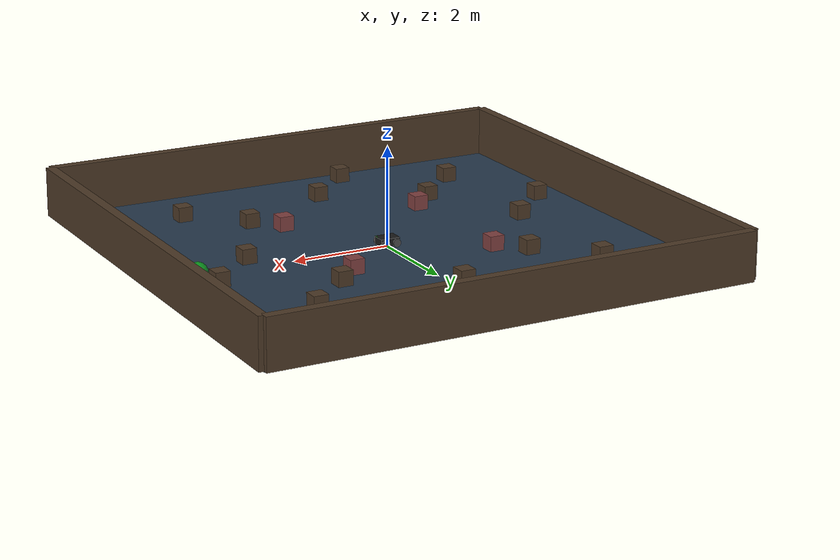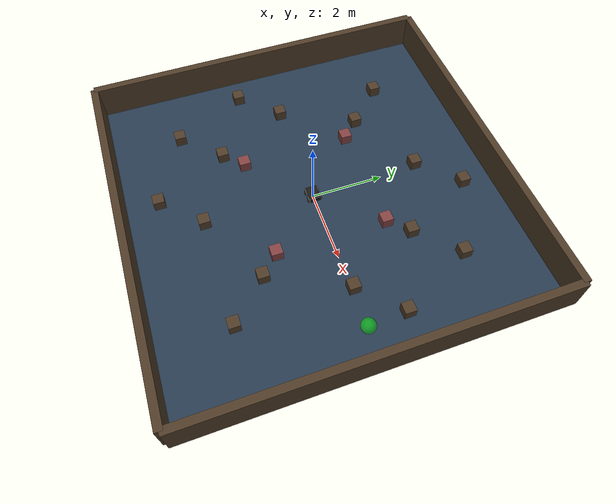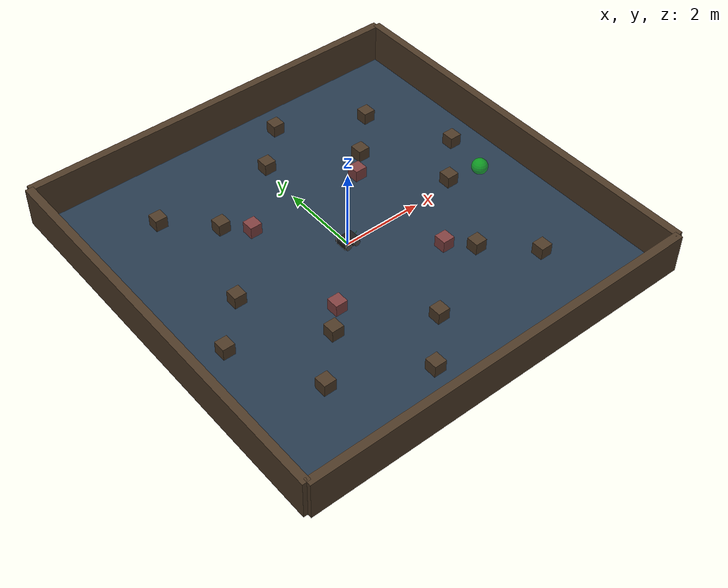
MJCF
<mujoco model="mobile_robot_box_forest">
    <compiler angle="degree" coordinate="local" inertiafromgeom="true" autolimits="true"/>
    <option integrator="RK4" timestep="0.002" iterations="100" solver="Newton" gravity="0 0 -9.81"/>

    <asset>
        <texture name="texplane" type="2d" builtin="checker" rgb1=".2 .3 .4" rgb2=".1 .15 .2" width="512" height="512" mark="cross" markrgb=".8 .8 .8"/>
        <material name="matplane" reflectance="0.3" texture="texplane" texrepeat="1 1" texuniform="true"/>
        <texture name="texbrick" type="2d" builtin="checker" rgb1=".6 .3 .3" rgb2=".4 .2 .2" width="256" height="256"/>
        <material name="matbrick" texture="texbrick"/>
        <texture name="texwood" type="2d" builtin="checker" rgb1=".4 .3 .2" rgb2=".2 .15 .1" width="256" height="256"/>
        <material name="matwood" texture="texwood"/>
    </asset>

    <worldbody>
        <light directional="true" cutoff="100" exponent="1" diffuse=".8 .8 .8" specular=".1 .1 .1" pos="0 0 10" dir="0 0 -1"/>
        <geom name="floor" pos="0 0 0" size="5 5 .1" type="plane" material="matplane" condim="3"/>

        <!-- Boundary Walls -->
        <geom name="wall_n" pos="0 5 0.5" size="5 0.1 0.5" type="box" material="matwood"/>
        <geom name="wall_s" pos="0 -5 0.5" size="5 0.1 0.5" type="box" material="matwood"/>
        <geom name="wall_e" pos="5 0 0.5" size="0.1 5 0.5" type="box" material="matwood"/>
        <geom name="wall_w" pos="-5 0 0.5" size="0.1 5 0.5" type="box" material="matwood"/>

        <!-- 20 Randomized Boxes -->
        <body name="box0" pos="2 2 0.3"><joint type="free"/><geom size="0.15 0.15 0.15" type="box" material="matwood" mass="50" friction="0.1"/></body>
        <body name="box1" pos="-2 -2 0.3"><joint type="free"/><geom size="0.15 0.15 0.15" type="box" material="matwood" mass="50" friction="0.1"/></body>
        <body name="box2" pos="2 -2 0.3"><joint type="free"/><geom size="0.15 0.15 0.15" type="box" material="matwood" mass="50" friction="0.1"/></body>
        <body name="box3" pos="-2 2 0.3"><joint type="free"/><geom size="0.15 0.15 0.15" type="box" material="matwood" mass="50" friction="0.1"/></body>
        <body name="box4" pos="3 3 0.3"><joint type="free"/><geom size="0.15 0.15 0.15" type="box" material="matwood" mass="50" friction="0.1"/></body>
        <body name="box5" pos="-3 -3 0.3"><joint type="free"/><geom size="0.15 0.15 0.15" type="box" material="matwood" mass="50" friction="0.1"/></body>
        <body name="box6" pos="3 -3 0.3"><joint type="free"/><geom size="0.15 0.15 0.15" type="box" material="matwood" mass="50" friction="0.1"/></body>
        <body name="box7" pos="-3 3 0.3"><joint type="free"/><geom size="0.15 0.15 0.15" type="box" material="matwood" mass="50" friction="0.1"/></body>
        <body name="box8" pos="1 4 0.3"><joint type="free"/><geom size="0.15 0.15 0.15" type="box" material="matwood" mass="50" friction="0.1"/></body>
        <body name="box9" pos="-1 -4 0.3"><joint type="free"/><geom size="0.15 0.15 0.15" type="box" material="matwood" mass="50" friction="0.1"/></body>
        <body name="box10" pos="4 1 0.3"><joint type="free"/><geom size="0.15 0.15 0.15" type="box" material="matwood" mass="50" friction="0.1"/></body>
        <body name="box11" pos="-4 -1 0.3"><joint type="free"/><geom size="0.15 0.15 0.15" type="box" material="matwood" mass="50" friction="0.1"/></body>
        <body name="box12" pos="0 3 0.3"><joint type="free"/><geom size="0.15 0.15 0.15" type="box" material="matwood" mass="50" friction="0.1"/></body>
        <body name="box13" pos="0 -3 0.3"><joint type="free"/><geom size="0.15 0.15 0.15" type="box" material="matwood" mass="50" friction="0.1"/></body>
        <body name="box14" pos="3 0 0.3"><joint type="free"/><geom size="0.15 0.15 0.15" type="box" material="matwood" mass="50" friction="0.1"/></body>
        <body name="box15" pos="-3 0 0.3"><joint type="free"/><geom size="0.15 0.15 0.15" type="box" material="matwood" mass="50" friction="0.1"/></body>
        <body name="box16" pos="1.5 1.5 0.3"><joint type="free"/><geom size="0.15 0.15 0.15" type="box" material="matbrick" mass="50" friction="0.1"/></body>
        <body name="box17" pos="-1.5 -1.5 0.3"><joint type="free"/><geom size="0.15 0.15 0.15" type="box" material="matbrick" mass="50" friction="0.1"/></body>
        <body name="box18" pos="1.5 -1.5 0.3"><joint type="free"/><geom size="0.15 0.15 0.15" type="box" material="matbrick" mass="50" friction="0.1"/></body>
        <body name="box19" pos="-1.5 1.5 0.3"><joint type="free"/><geom size="0.15 0.15 0.15" type="box" material="matbrick" mass="50" friction="0.1"/></body>

        <!-- Mobile Robot (Start at Center) -->
        <body name="robot" pos="0 0 0.1">
            <freejoint name="root"/>
            <geom name="chassis" pos="0 0 0.02" size="0.2 0.15 0.08" type="box" rgba="0.1 0.1 0.1 1" mass="5"/>
            <body name="wfl" pos="0.12 0.17 0"><joint name="dfl" damping="0.1" axis="0 1 0"/><geom size="0.08 0.02" type="cylinder" euler="90 0 0" rgba="0.3 0.3 0.3 1" friction="1 0.005 0.0001"/></body>
            <body name="wrl" pos="-0.12 0.17 0"><joint name="drl" damping="0.1" axis="0 1 0"/><geom size="0.08 0.02" type="cylinder" euler="90 0 0" rgba="0.3 0.3 0.3 1" friction="1 0.005 0.0001"/></body>
            <body name="wfr" pos="0.12 -0.17 0"><joint name="dfr" damping="0.1" axis="0 1 0"/><geom size="0.08 0.02" type="cylinder" euler="90 0 0" rgba="0.3 0.3 0.3 1" friction="1 0.005 0.0001"/></body>
            <body name="wrr" pos="-0.12 -0.17 0"><joint name="drr" damping="0.1" axis="0 1 0"/><geom size="0.08 0.02" type="cylinder" euler="90 0 0" rgba="0.3 0.3 0.3 1" friction="1 0.005 0.0001"/></body>

            <!-- LiDAR Sites -->
            <site name="s0" pos="0.25 0 0.15" zaxis="0 -1 0" group="1"/><site name="s1" pos="0.25 0 0.15" zaxis="0.156 -0.988 0" group="1"/><site name="s2" pos="0.25 0 0.15" zaxis="0.309 -0.951 0" group="1"/>
            <site name="s3" pos="0.25 0 0.15" zaxis="0.454 -0.891 0" group="1"/><site name="s4" pos="0.25 0 0.15" zaxis="0.588 -0.809 0" group="1"/><site name="s5" pos="0.25 0 0.15" zaxis="0.707 -0.707 0" group="1"/>
            <site name="s6" pos="0.25 0 0.15" zaxis="0.809 -0.588 0" group="1"/><site name="s7" pos="0.25 0 0.15" zaxis="0.891 -0.454 0" group="1"/><site name="s8" pos="0.25 0 0.15" zaxis="0.951 -0.309 0" group="1"/>
            <site name="s9" pos="0.25 0 0.15" zaxis="0.988 -0.156 0" group="1"/><site name="s10" pos="0.25 0 0.15" zaxis="1 0 0" group="1"/><site name="s11" pos="0.25 0 0.15" zaxis="0.988 0.156 0" group="1"/>
            <site name="s12" pos="0.25 0 0.15" zaxis="0.951 0.309 0" group="1"/><site name="s13" pos="0.25 0 0.15" zaxis="0.891 0.454 0" group="1"/><site name="s14" pos="0.25 0 0.15" zaxis="0.809 0.588 0" group="1"/>
            <site name="s15" pos="0.25 0 0.15" zaxis="0.707 0.707 0" group="1"/><site name="s16" pos="0.25 0 0.15" zaxis="0.588 0.809 0" group="1"/><site name="s17" pos="0.25 0 0.15" zaxis="0.454 0.891 0" group="1"/>
            <site name="s18" pos="0.25 0 0.15" zaxis="0.309 0.951 0" group="1"/><site name="s19" pos="0.25 0 0.15" zaxis="0.156 0.988 0" group="1"/>
        </body>

        <!-- Goal -->
        <body name="goal" pos="4 0 0.1"><site name="goal_s" size="0.2" type="sphere" rgba="0 1 0 0.5"/></body>

        <!-- LiDAR Beams -->
        <body name="lidar_beam_0" mocap="true"><site name="hit_0" size="0.005" rgba="0 1 0 0" group="1"/></body><body name="lidar_beam_1" mocap="true"><site name="hit_1" size="0.005" rgba="0 1 0 0" group="1"/></body><body name="lidar_beam_2" mocap="true"><site name="hit_2" size="0.005" rgba="0 1 0 0" group="1"/></body><body name="lidar_beam_3" mocap="true"><site name="hit_3" size="0.005" rgba="0 1 0 0" group="1"/></body>
        <body name="lidar_beam_4" mocap="true"><site name="hit_4" size="0.005" rgba="0 1 0 0" group="1"/></body><body name="lidar_beam_5" mocap="true"><site name="hit_5" size="0.005" rgba="0 1 0 0" group="1"/></body><body name="lidar_beam_6" mocap="true"><site name="hit_6" size="0.005" rgba="0 1 0 0" group="1"/></body><body name="lidar_beam_7" mocap="true"><site name="hit_7" size="0.005" rgba="0 1 0 0" group="1"/></body>
        <body name="lidar_beam_8" mocap="true"><site name="hit_8" size="0.005" rgba="0 1 0 0" group="1"/></body><body name="lidar_beam_9" mocap="true"><site name="hit_9" size="0.005" rgba="0 1 0 0" group="1"/></body><body name="lidar_beam_10" mocap="true"><site name="hit_10" size="0.005" rgba="0 1 0 0" group="1"/></body><body name="lidar_beam_11" mocap="true"><site name="hit_11" size="0.005" rgba="0 1 0 0" group="1"/></body>
        <body name="lidar_beam_12" mocap="true"><site name="hit_12" size="0.005" rgba="0 1 0 0" group="1"/></body><body name="lidar_beam_13" mocap="true"><site name="hit_13" size="0.005" rgba="0 1 0 0" group="1"/></body><body name="lidar_beam_14" mocap="true"><site name="hit_14" size="0.005" rgba="0 1 0 0" group="1"/></body><body name="lidar_beam_15" mocap="true"><site name="hit_15" size="0.005" rgba="0 1 0 0" group="1"/></body>
        <body name="lidar_beam_16" mocap="true"><site name="hit_16" size="0.005" rgba="0 1 0 0" group="1"/></body><body name="lidar_beam_17" mocap="true"><site name="hit_17" size="0.005" rgba="0 1 0 0" group="1"/></body><body name="lidar_beam_18" mocap="true"><site name="hit_18" size="0.005" rgba="0 1 0 0" group="1"/></body><body name="lidar_beam_19" mocap="true"><site name="hit_19" size="0.005" rgba="0 1 0 0" group="1"/></body>
    </worldbody>

    <tendon>
        <spatial name="beam0" rgba="0 1 0 0.8" width="0.003" group="1"><site site="s0"/><site site="hit_0"/></spatial><spatial name="beam1" rgba="0 1 0 0.8" width="0.003" group="1"><site site="s1"/><site site="hit_1"/></spatial><spatial name="beam2" rgba="0 1 0 0.8" width="0.003" group="1"><site site="s2"/><site site="hit_2"/></spatial><spatial name="beam3" rgba="0 1 0 0.8" width="0.003" group="1"><site site="s3"/><site site="hit_3"/></spatial>
        <spatial name="beam4" rgba="0 1 0 0.8" width="0.003" group="1"><site site="s4"/><site site="hit_4"/></spatial><spatial name="beam5" rgba="0 1 0 0.8" width="0.003" group="1"><site site="s5"/><site site="hit_5"/></spatial><spatial name="beam6" rgba="0 1 0 0.8" width="0.003" group="1"><site site="s6"/><site site="hit_6"/></spatial><spatial name="beam7" rgba="0 1 0 0.8" width="0.003" group="1"><site site="s7"/><site site="hit_7"/></spatial>
        <spatial name="beam8" rgba="0 1 0 0.8" width="0.003" group="1"><site site="s8"/><site site="hit_8"/></spatial><spatial name="beam9" rgba="0 1 0 0.8" width="0.003" group="1"><site site="s9"/><site site="hit_9"/></spatial><spatial name="beam10" rgba="0 1 0 0.8" width="0.003" group="1"><site site="s10"/><site site="hit_10"/></spatial><spatial name="beam11" rgba="0 1 0 0.8" width="0.003" group="1"><site site="s11"/><site site="hit_11"/></spatial>
        <spatial name="beam12" rgba="0 1 0 0.8" width="0.003" group="1"><site site="s12"/><site site="hit_12"/></spatial><spatial name="beam13" rgba="0 1 0 0.8" width="0.003" group="1"><site site="s13"/><site site="hit_13"/></spatial><spatial name="beam14" rgba="0 1 0 0.8" width="0.003" group="1"><site site="s14"/><site site="hit_14"/></spatial><spatial name="beam15" rgba="0 1 0 0.8" width="0.003" group="1"><site site="s15"/><site site="hit_15"/></spatial>
        <spatial name="beam16" rgba="0 1 0 0.8" width="0.003" group="1"><site site="s16"/><site site="hit_16"/></spatial><spatial name="beam17" rgba="0 1 0 0.8" width="0.003" group="1"><site site="s17"/><site site="hit_17"/></spatial><spatial name="beam18" rgba="0 1 0 0.8" width="0.003" group="1"><site site="s18"/><site site="hit_18"/></spatial><spatial name="beam19" rgba="0 1 0 0.8" width="0.003" group="1"><site site="s19"/><site site="hit_19"/></spatial>
    </tendon>

    <sensor>
        <rangefinder name="ray0" site="s0"/><rangefinder name="ray1" site="s1"/><rangefinder name="ray2" site="s2"/>
        <rangefinder name="ray3" site="s3"/><rangefinder name="ray4" site="s4"/><rangefinder name="ray5" site="s5"/>
        <rangefinder name="ray6" site="s6"/><rangefinder name="ray7" site="s7"/><rangefinder name="ray8" site="s8"/>
        <rangefinder name="ray9" site="s9"/><rangefinder name="ray10" site="s10"/><rangefinder name="ray11" site="s11"/>
        <rangefinder name="ray12" site="s12"/><rangefinder name="ray13" site="s13"/><rangefinder name="ray14" site="s14"/>
        <rangefinder name="ray15" site="s15"/><rangefinder name="ray16" site="s16"/><rangefinder name="ray17" site="s17"/>
        <rangefinder name="ray18" site="s18"/><rangefinder name="ray19" site="s19"/>
    </sensor>

    <actuator>
        <velocity name="v_fl" joint="dfl" ctrlrange="-10 10" kv="2" forcerange="-5 5"/>
        <velocity name="v_rl" joint="drl" ctrlrange="-10 10" kv="2" forcerange="-5 5"/>
        <velocity name="v_fr" joint="dfr" ctrlrange="-10 10" kv="2" forcerange="-5 5"/>
        <velocity name="v_rr" joint="drr" ctrlrange="-10 10" kv="2" forcerange="-5 5"/>
    </actuator>
</mujoco>
